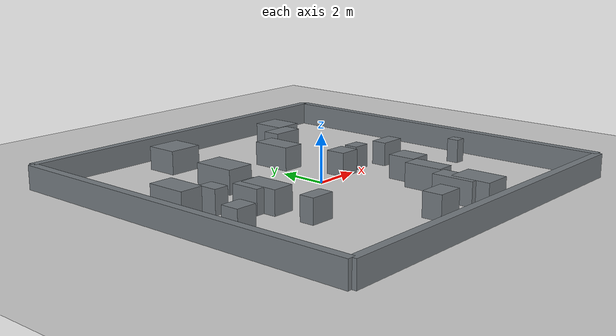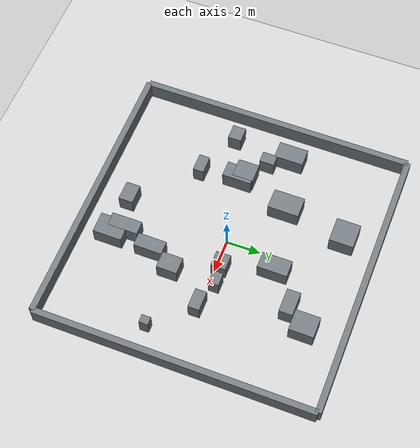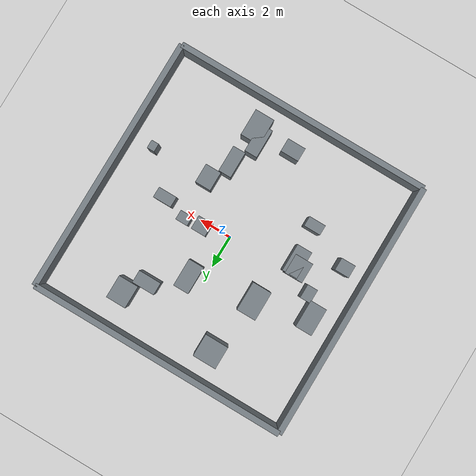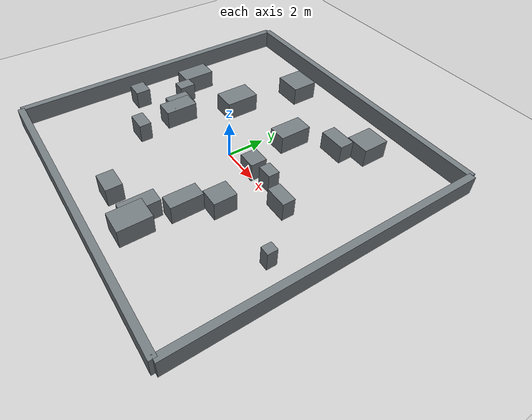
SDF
<?xml version="1.0" ?>
<sdf version="1.10">
  <world name="random_blocks_2">
    <physics name="1ms" type="ignored">
      <max_step_size>0.001</max_step_size>
      <real_time_factor>1.0</real_time_factor>
    </physics>
    <plugin filename="gz-sim-physics-system" name="gz::sim::systems::Physics"/>
    <plugin filename="gz-sim-user-commands-system" name="gz::sim::systems::UserCommands"/>
    <plugin filename="gz-sim-scene-broadcaster-system" name="gz::sim::systems::SceneBroadcaster"/>
    <light name="sun" type="directional">
      <pose>0 0 10 0 0 0</pose>
      <diffuse>0.8 0.8 0.8 1</diffuse>
      <specular>0.2 0.2 0.2 1</specular>
      <direction>-0.5 0.1 -0.9</direction>
    </light>
    <model name="ground_plane">
      <static>true</static>
      <link name="link">
        <collision name="collision"><geometry><plane><normal>0 0 1</normal><size>30 30</size></plane></geometry></collision>
        <visual name="visual"><geometry><plane><normal>0 0 1</normal><size>30 30</size></plane></geometry></visual>
      </link>
    </model>

    <model name="boundary_north">
      <static>true</static>
      <pose>0.000 8.000 0.500 0 0 0</pose>
      <link name="link">
        <collision name="collision">
          <geometry><box><size>16.000 0.350 1.000</size></box></geometry>
        </collision>
        <visual name="visual">
          <geometry><box><size>16.000 0.350 1.000</size></box></geometry>
          <material><ambient>0.45 0.48 0.50 1</ambient><diffuse>0.45 0.48 0.50 1</diffuse></material>
        </visual>
      </link>
    </model>
    <model name="boundary_south">
      <static>true</static>
      <pose>0.000 -8.000 0.500 0 0 0</pose>
      <link name="link">
        <collision name="collision">
          <geometry><box><size>16.000 0.350 1.000</size></box></geometry>
        </collision>
        <visual name="visual">
          <geometry><box><size>16.000 0.350 1.000</size></box></geometry>
          <material><ambient>0.45 0.48 0.50 1</ambient><diffuse>0.45 0.48 0.50 1</diffuse></material>
        </visual>
      </link>
    </model>
    <model name="boundary_west">
      <static>true</static>
      <pose>-8.000 0.000 0.500 0 0 0</pose>
      <link name="link">
        <collision name="collision">
          <geometry><box><size>0.350 16.000 1.000</size></box></geometry>
        </collision>
        <visual name="visual">
          <geometry><box><size>0.350 16.000 1.000</size></box></geometry>
          <material><ambient>0.45 0.48 0.50 1</ambient><diffuse>0.45 0.48 0.50 1</diffuse></material>
        </visual>
      </link>
    </model>
    <model name="boundary_east">
      <static>true</static>
      <pose>8.000 0.000 0.500 0 0 0</pose>
      <link name="link">
        <collision name="collision">
          <geometry><box><size>0.350 16.000 1.000</size></box></geometry>
        </collision>
        <visual name="visual">
          <geometry><box><size>0.350 16.000 1.000</size></box></geometry>
          <material><ambient>0.45 0.48 0.50 1</ambient><diffuse>0.45 0.48 0.50 1</diffuse></material>
        </visual>
      </link>
    </model>
    <model name="block_2_0">
      <static>true</static>
      <pose>6.398 -2.176 0.500 0 0 0</pose>
      <link name="link">
        <collision name="collision">
          <geometry><box><size>0.462 0.519 1.000</size></box></geometry>
        </collision>
        <visual name="visual">
          <geometry><box><size>0.462 0.519 1.000</size></box></geometry>
          <material><ambient>0.45 0.48 0.50 1</ambient><diffuse>0.45 0.48 0.50 1</diffuse></material>
        </visual>
      </link>
    </model>
    <model name="block_2_1">
      <static>true</static>
      <pose>-0.537 -6.072 0.500 0 0 0</pose>
      <link name="link">
        <collision name="collision">
          <geometry><box><size>1.137 0.831 1.000</size></box></geometry>
        </collision>
        <visual name="visual">
          <geometry><box><size>1.137 0.831 1.000</size></box></geometry>
          <material><ambient>0.45 0.48 0.50 1</ambient><diffuse>0.45 0.48 0.50 1</diffuse></material>
        </visual>
      </link>
    </model>
    <model name="block_2_2">
      <static>true</static>
      <pose>-3.785 -3.005 0.500 0 0 0</pose>
      <link name="link">
        <collision name="collision">
          <geometry><box><size>1.039 0.622 1.000</size></box></geometry>
        </collision>
        <visual name="visual">
          <geometry><box><size>1.039 0.622 1.000</size></box></geometry>
          <material><ambient>0.45 0.48 0.50 1</ambient><diffuse>0.45 0.48 0.50 1</diffuse></material>
        </visual>
      </link>
    </model>
    <model name="block_2_3">
      <static>true</static>
      <pose>-3.035 2.399 0.500 0 0 0</pose>
      <link name="link">
        <collision name="collision">
          <geometry><box><size>1.195 1.793 1.000</size></box></geometry>
        </collision>
        <visual name="visual">
          <geometry><box><size>1.195 1.793 1.000</size></box></geometry>
          <material><ambient>0.45 0.48 0.50 1</ambient><diffuse>0.45 0.48 0.50 1</diffuse></material>
        </visual>
      </link>
    </model>
    <model name="block_2_4">
      <static>true</static>
      <pose>-6.464 -1.842 0.500 0 0 0</pose>
      <link name="link">
        <collision name="collision">
          <geometry><box><size>0.889 0.776 1.000</size></box></geometry>
        </collision>
        <visual name="visual">
          <geometry><box><size>0.889 0.776 1.000</size></box></geometry>
          <material><ambient>0.45 0.48 0.50 1</ambient><diffuse>0.45 0.48 0.50 1</diffuse></material>
        </visual>
      </link>
    </model>
    <model name="block_2_5">
      <static>true</static>
      <pose>1.672 0.291 0.500 0 0 0</pose>
      <link name="link">
        <collision name="collision">
          <geometry><box><size>0.911 0.846 1.000</size></box></geometry>
        </collision>
        <visual name="visual">
          <geometry><box><size>0.911 0.846 1.000</size></box></geometry>
          <material><ambient>0.45 0.48 0.50 1</ambient><diffuse>0.45 0.48 0.50 1</diffuse></material>
        </visual>
      </link>
    </model>
    <model name="block_2_6">
      <static>true</static>
      <pose>2.792 -2.257 0.500 0 0 0</pose>
      <link name="link">
        <collision name="collision">
          <geometry><box><size>0.978 1.185 1.000</size></box></geometry>
        </collision>
        <visual name="visual">
          <geometry><box><size>0.978 1.185 1.000</size></box></geometry>
          <material><ambient>0.45 0.48 0.50 1</ambient><diffuse>0.45 0.48 0.50 1</diffuse></material>
        </visual>
      </link>
    </model>
    <model name="block_2_7">
      <static>true</static>
      <pose>2.767 0.418 0.500 0 0 0</pose>
      <link name="link">
        <collision name="collision">
          <geometry><box><size>0.758 0.591 1.000</size></box></geometry>
        </collision>
        <visual name="visual">
          <geometry><box><size>0.758 0.591 1.000</size></box></geometry>
          <material><ambient>0.45 0.48 0.50 1</ambient><diffuse>0.45 0.48 0.50 1</diffuse></material>
        </visual>
      </link>
    </model>
    <model name="block_2_8">
      <static>true</static>
      <pose>4.306 -0.036 0.500 0 0 0</pose>
      <link name="link">
        <collision name="collision">
          <geometry><box><size>1.142 0.655 1.000</size></box></geometry>
        </collision>
        <visual name="visual">
          <geometry><box><size>1.142 0.655 1.000</size></box></geometry>
          <material><ambient>0.45 0.48 0.50 1</ambient><diffuse>0.45 0.48 0.50 1</diffuse></material>
        </visual>
      </link>
    </model>
    <model name="block_2_9">
      <static>true</static>
      <pose>1.858 -6.140 0.500 0 0 0</pose>
      <link name="link">
        <collision name="collision">
          <geometry><box><size>1.208 1.669 1.000</size></box></geometry>
        </collision>
        <visual name="visual">
          <geometry><box><size>1.208 1.669 1.000</size></box></geometry>
          <material><ambient>0.45 0.48 0.50 1</ambient><diffuse>0.45 0.48 0.50 1</diffuse></material>
        </visual>
      </link>
    </model>
    <model name="block_2_10">
      <static>true</static>
      <pose>1.408 -5.519 0.500 0 0 0</pose>
      <link name="link">
        <collision name="collision">
          <geometry><box><size>0.789 1.773 1.000</size></box></geometry>
        </collision>
        <visual name="visual">
          <geometry><box><size>0.789 1.773 1.000</size></box></geometry>
          <material><ambient>0.45 0.48 0.50 1</ambient><diffuse>0.45 0.48 0.50 1</diffuse></material>
        </visual>
      </link>
    </model>
    <model name="block_2_11">
      <static>true</static>
      <pose>3.596 5.760 0.500 0 0 0</pose>
      <link name="link">
        <collision name="collision">
          <geometry><box><size>1.229 1.401 1.000</size></box></geometry>
        </collision>
        <visual name="visual">
          <geometry><box><size>1.229 1.401 1.000</size></box></geometry>
          <material><ambient>0.45 0.48 0.50 1</ambient><diffuse>0.45 0.48 0.50 1</diffuse></material>
        </visual>
      </link>
    </model>
    <model name="block_2_12">
      <static>true</static>
      <pose>-3.965 -0.765 0.500 0 0 0</pose>
      <link name="link">
        <collision name="collision">
          <geometry><box><size>0.939 1.695 1.000</size></box></geometry>
        </collision>
        <visual name="visual">
          <geometry><box><size>0.939 1.695 1.000</size></box></geometry>
          <material><ambient>0.45 0.48 0.50 1</ambient><diffuse>0.45 0.48 0.50 1</diffuse></material>
        </visual>
      </link>
    </model>
    <model name="block_2_13">
      <static>true</static>
      <pose>2.085 -3.709 0.500 0 0 0</pose>
      <link name="link">
        <collision name="collision">
          <geometry><box><size>0.789 1.636 1.000</size></box></geometry>
        </collision>
        <visual name="visual">
          <geometry><box><size>0.789 1.636 1.000</size></box></geometry>
          <material><ambient>0.45 0.48 0.50 1</ambient><diffuse>0.45 0.48 0.50 1</diffuse></material>
        </visual>
      </link>
    </model>
    <model name="block_2_14">
      <static>true</static>
      <pose>-6.256 1.564 0.500 0 0 0</pose>
      <link name="link">
        <collision name="collision">
          <geometry><box><size>1.024 1.688 1.000</size></box></geometry>
        </collision>
        <visual name="visual">
          <geometry><box><size>1.024 1.688 1.000</size></box></geometry>
          <material><ambient>0.45 0.48 0.50 1</ambient><diffuse>0.45 0.48 0.50 1</diffuse></material>
        </visual>
      </link>
    </model>
    <model name="block_2_15">
      <static>true</static>
      <pose>-5.461 0.461 0.500 0 0 0</pose>
      <link name="link">
        <collision name="collision">
          <geometry><box><size>0.644 0.855 1.000</size></box></geometry>
        </collision>
        <visual name="visual">
          <geometry><box><size>0.644 0.855 1.000</size></box></geometry>
          <material><ambient>0.45 0.48 0.50 1</ambient><diffuse>0.45 0.48 0.50 1</diffuse></material>
        </visual>
      </link>
    </model>
    <model name="block_2_16">
      <static>true</static>
      <pose>2.691 4.621 0.500 0 0 0</pose>
      <link name="link">
        <collision name="collision">
          <geometry><box><size>1.399 0.775 1.000</size></box></geometry>
        </collision>
        <visual name="visual">
          <geometry><box><size>1.399 0.775 1.000</size></box></geometry>
          <material><ambient>0.45 0.48 0.50 1</ambient><diffuse>0.45 0.48 0.50 1</diffuse></material>
        </visual>
      </link>
    </model>
    <model name="block_2_17">
      <static>true</static>
      <pose>-2.381 6.062 0.500 0 0 0</pose>
      <link name="link">
        <collision name="collision">
          <geometry><box><size>1.453 1.389 1.000</size></box></geometry>
        </collision>
        <visual name="visual">
          <geometry><box><size>1.453 1.389 1.000</size></box></geometry>
          <material><ambient>0.45 0.48 0.50 1</ambient><diffuse>0.45 0.48 0.50 1</diffuse></material>
        </visual>
      </link>
    </model>
    <model name="block_2_18">
      <static>true</static>
      <pose>-4.247 -0.476 0.500 0 0 0</pose>
      <link name="link">
        <collision name="collision">
          <geometry><box><size>1.117 1.223 1.000</size></box></geometry>
        </collision>
        <visual name="visual">
          <geometry><box><size>1.117 1.223 1.000</size></box></geometry>
          <material><ambient>0.45 0.48 0.50 1</ambient><diffuse>0.45 0.48 0.50 1</diffuse></material>
        </visual>
      </link>
    </model>
    <model name="block_2_19">
      <static>true</static>
      <pose>0.842 3.103 0.500 0 0 0</pose>
      <link name="link">
        <collision name="collision">
          <geometry><box><size>0.963 1.708 1.000</size></box></geometry>
        </collision>
        <visual name="visual">
          <geometry><box><size>0.963 1.708 1.000</size></box></geometry>
          <material><ambient>0.45 0.48 0.50 1</ambient><diffuse>0.45 0.48 0.50 1</diffuse></material>
        </visual>
      </link>
    </model>
  </world>
</sdf>
